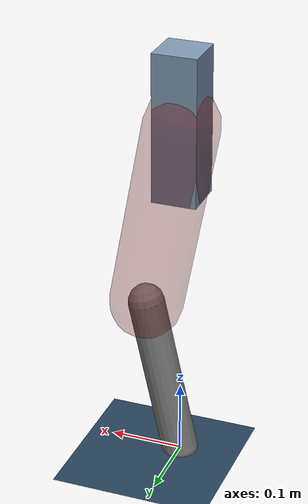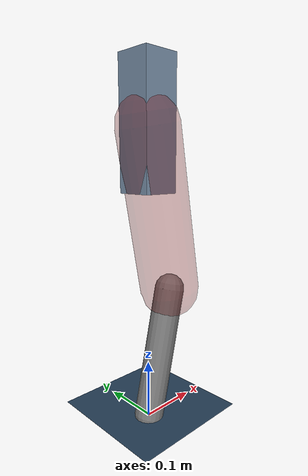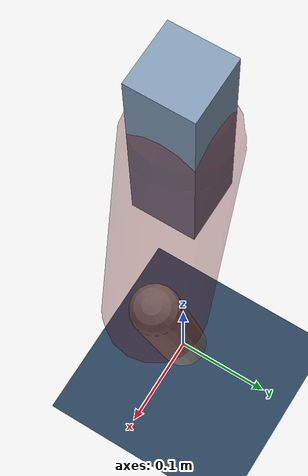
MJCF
<mujoco model="Hopper2D">
	<compiler inertiafromgeom="true" angle="radian" />
	<option timestep="0.001" integrator="implicit" cone="elliptic" solver="Newton" tolerance="1e-10" />

	<default>
		<geom contype="1" conaffinity="1" condim="3" friction="2 0.005 0.0001" solref="0.005 1" />
		<joint limited="true" damping="0.1" />
	</default>

	<asset>
		<texture name="skybox" type="skybox" builtin="gradient" rgb1=".4 .6 .8" rgb2="0 0 0" width="800" height="800" />
		<texture name="grid" type="2d" builtin="checker" rgb1=".1 .2 .3" rgb2=".2 .3 .4" width="300" height="300" mark="edge" markrgb=".2 .3 .4" />
		<material name="ground" texture="grid" texrepeat="1 1" texuniform="true" reflectance="0.1" />
		<material name="leg" rgba="0.5 0.6 0.7 1" />
	</asset>

	<worldbody>

		<geom name="floor" type="plane" size="5 5 0.25" material="ground" />

		<light directional="false" diffuse="0.8 0.8 0.8" specular="0.3 0.3 0.3" pos="0 0 2" dir="0 0 -1" />
		<light mode="targetbodycom" target="base" directional="false" diffuse="0.8 0.8 0.8" specular="0.3 0.3 0.3" pos="0 0 2" dir="0 0 -1" />

		<camera name="fixed" pos="0 -2 1" xyaxes="1 0 0 0 0 1" />
		<camera name="tracking" mode="trackcom" pos="0 -3 1" />

		<body name="root" pos="0 0 0.48527292641386266">
			<joint name="slide_x" type="slide" axis="1 0 0" range="-100 100" />
			<joint name="slide_z" type="slide" axis="0 0 1" range="0 10" />

			<body name="base" pos="0 0 0">
				<geom name="torso" type="box" size="0.03 0.03 0.1" mass="2.143" material="leg" />

				<body name="link1" pos="0 0 0" euler="0 1.3855215324858103 0">
					<joint type="hinge" axis="0 -1 0" pos="0 0 0" name="hinge1" limited="true" range="-3.14 3.14" stiffness="0" damping="0.1" />
					<geom name="thigh" type="capsule" fromto="0 0 0 0.2678337253895295 0 0" size="0.05" rgba="0.5 0 0 0.3" mass="0.9029676860127767" />

					<body name="link2" pos="0.2678337253895295 0 0" euler="0 0.4039479595081524 0">
						<joint type="hinge" axis="0 -1 0" pos="0 0 0" name="hinge2" limited="true" range="-3.14 3.14" stiffness="0" damping="0.1" />
						<geom name="shank" type="capsule" fromto="0 0 0 0.22743920102433318 0 0" size="0.025" mass="0.42385136081946656" />

					</body>
				</body>
			</body>
		</body>
	</worldbody>

	<actuator>
		<motor name="torque1" joint="hinge1" ctrlrange="-48.241086326095164 48.241086326095164" ctrllimited="true" gear="1" />
		<motor name="torque2" joint="hinge2" ctrlrange="-96.52940963559527 96.52940963559527" ctrllimited="true" gear="1" />
	</actuator>
</mujoco>
